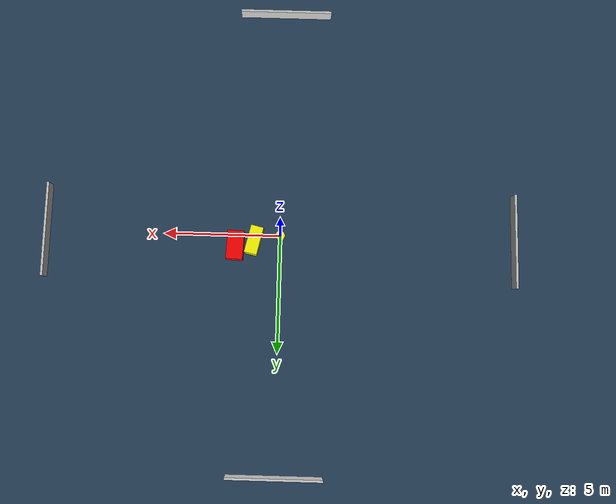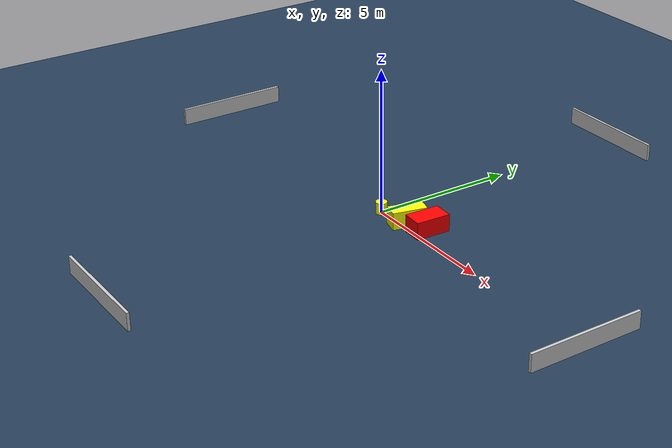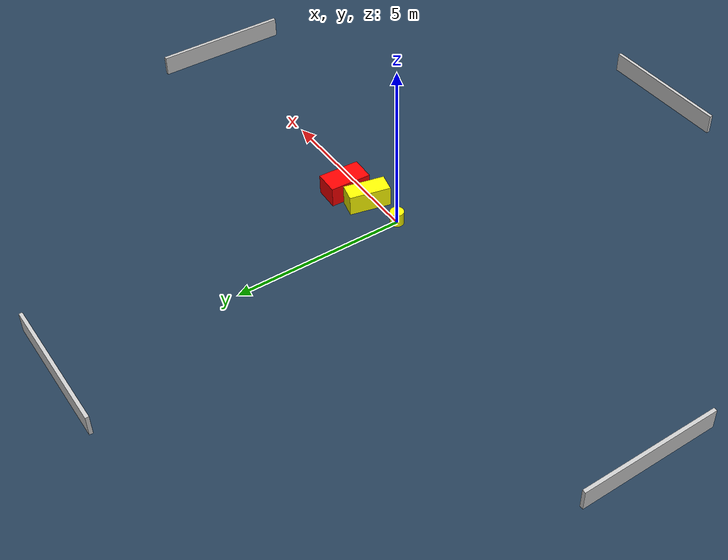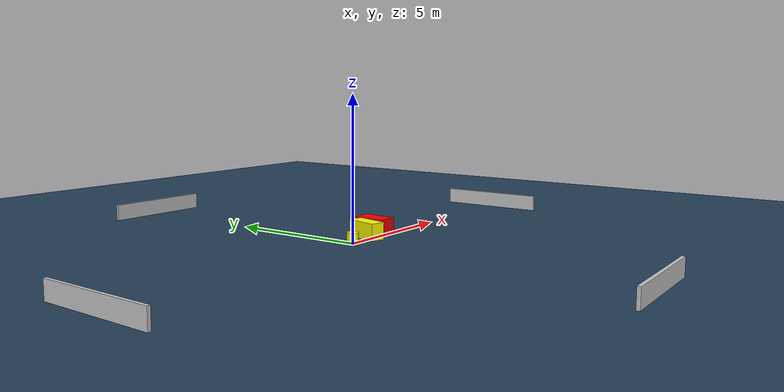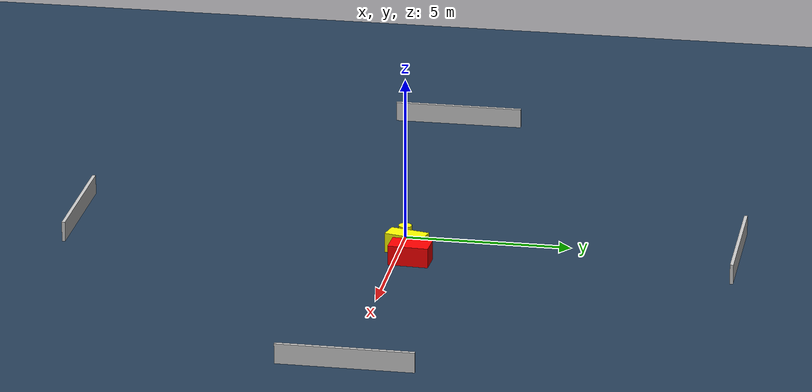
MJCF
<?xml version="1.0" ?>
<mujoco model="generated_environment">
  <option timestep="0.01" integrator="RK4" cone="elliptic"/>
  <default>
    <geom density="1"/>
  </default>
  <asset>
    <texture builtin="gradient" height="3072" name="skybox" rgb1="0.3 0.5 0.7" rgb2="0 0 0" type="skybox" width="512"/>
    <texture builtin="checker" height="300" name="groundplane" rgb1="0.2 0.3 0.4" rgb2="0.1 0.2 0.3" type="2d" width="300"/>
    <material name="groundplane" reflectance="0.2" texrepeat="5 5" texture="groundplane"/>
  </asset>
  <worldbody>
    <light dir="0 0 -1" directional="true" pos="0 0 1.5"/>
    <geom condim="3" friction="0.5 0.005 0.001" material="groundplane" name="floor" pos="0 0 0" size="0 0 0.05" type="plane"/>
    <body name="walls">
      <geom name="wall_1" condim="4" pos="-10.0 0.0 0.3" rgba="0.800000011920929 0.800000011920929 0.800000011920929 1.0" size="0.05 2.0 0.3" type="box"/>
      <geom name="wall_2" condim="4" pos="10.0 0.0 0.3" rgba="0.800000011920929 0.800000011920929 0.800000011920929 1.0" size="0.05 2.0 0.3" type="box"/>
      <geom name="wall_3" condim="4" pos="0.0 -10.0 0.3" rgba="0.800000011920929 0.800000011920929 0.800000011920929 1.0" size="2.0 0.05 0.3" type="box"/>
      <geom name="wall_4" condim="4" pos="0.0 10.0 0.3" rgba="0.800000011920929 0.800000011920929 0.800000011920929 1.0" size="2.0 0.05 0.3" type="box"/>
    </body>
    <body name="robot">
      <joint name="joint_x" type="slide" pos="0 0 0" axis="1 0 0"/>
      <joint name="joint_y" type="slide" pos="0 0 0" axis="0 1 0"/>
      <geom name="robot" type="cylinder" pos="0.0 0.0 0.2" size="0.2 0.2 0.0" mass="5.0" friction="1.0 0.005 0.0001" condim="4" rgba="1.0 1.0 0.0 1.0"/>
    </body>
    <body name="obstacle_1_movable">
      <geom name="obstacle_1_movable" condim="4" pos="1.1167598638102412 0.24402440221088129 0.3" euler="0 0 346.8271336322084" friction="0.0 0.005 0.001" rgba="1.0 1.0 0.0 1.0" size="0.27115099488790273 0.6000653063540615 0.3" type="box" mass="0.1"/>
      <joint type="free"/>
    </body>
    <body name="obstacle_2_static">
      <geom name="obstacle_2_static" condim="4" pos="1.903500973314704 0.4754960156380456 0.3" euler="0 0 177.38668970883182" friction="0.0 0.005 0.001" rgba="1.0 0.0 0.0 1.0" size="0.356179106676612 0.604537924330762 0.3" type="box"/>
    </body>
  </worldbody>
  <actuator>
    <motor name="actuator_x" joint="joint_x" gear="1" ctrlrange="-1 1"/>
    <motor name="actuator_y" joint="joint_y" gear="1" ctrlrange="-1 1"/>
  </actuator>
</mujoco>
